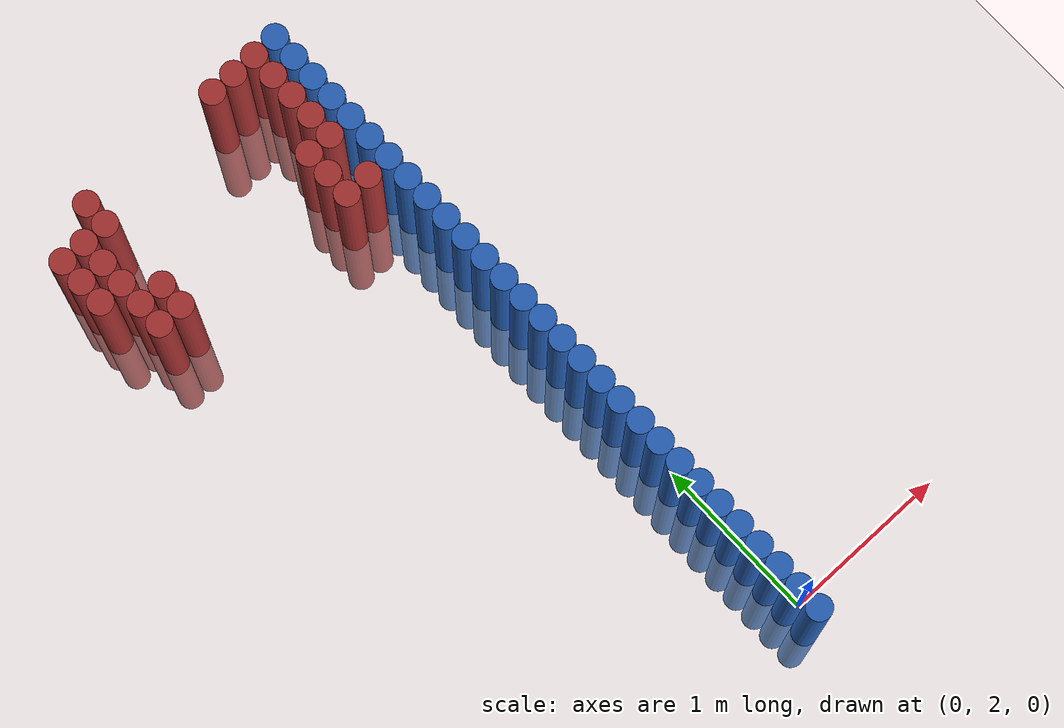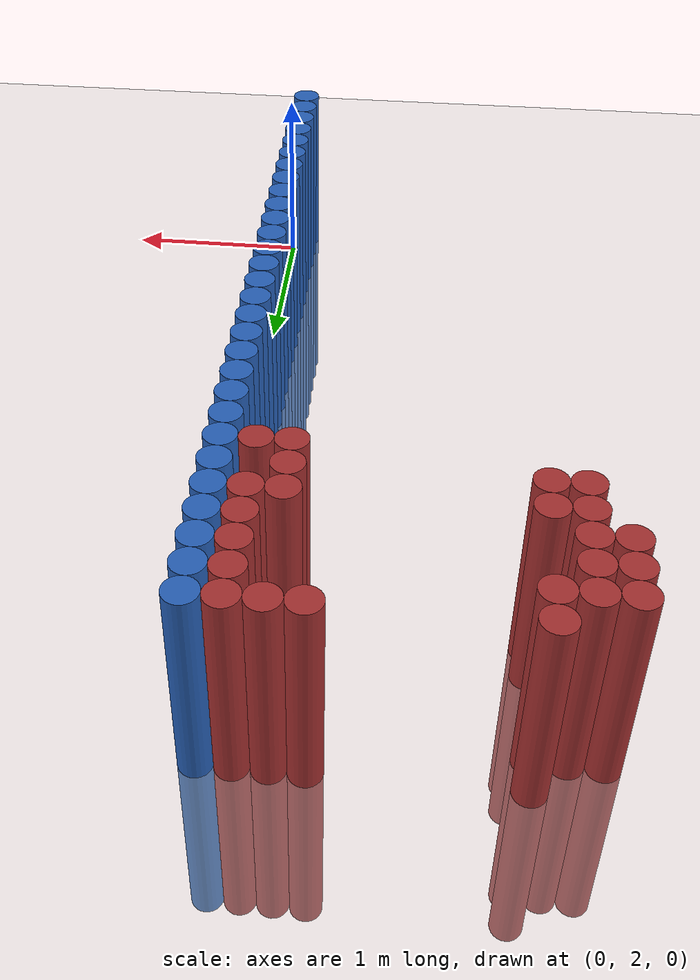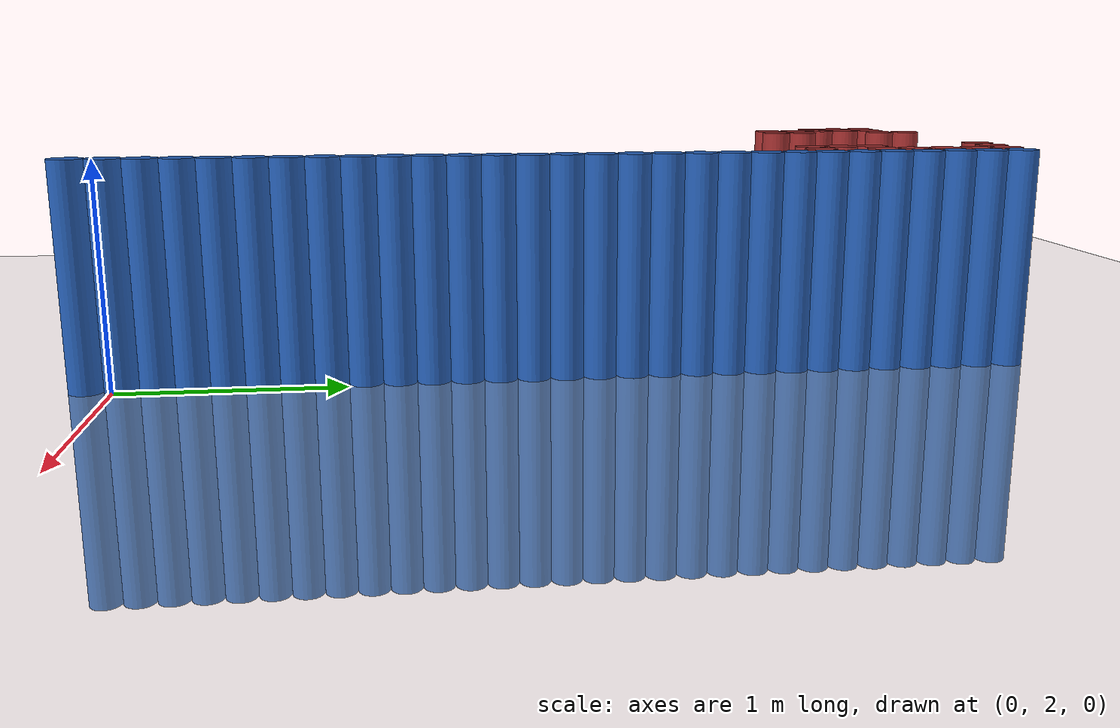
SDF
<sdf version="1.6">
 <world name="default">
  <model name="ground_plane">
   <static>1</static>
   <link name="link">
    <collision name="collision">
     <geometry><plane><normal>0 0 1</normal><size>100 100</size></plane></geometry>
     <surface><friction><ode><mu>100</mu><mu2>50</mu2></ode></friction></surface>
    </collision>
    <visual name="visual">
     <cast_shadows>0</cast_shadows>
     <geometry><plane><normal>0 0 1</normal><size>100 100</size></plane></geometry>
     <material>
      <script><uri>file://media/materials/scripts/gazebo.material</uri><name>Gazebo/Grey</name></script>
     </material>
    </visual>
   </link>
  </model>
  <model name="unit_cylinder_52">
   <static>1</static>
   <pose>-0.075000 1.875000 0.000000 0.000000 0.000000 0.000000</pose>
   <link name="link">
    <inertial>
     <mass>1</mass>
     <inertia><ixx>0.145833</ixx><ixy>0</ixy><ixz>0</ixz><iyy>0.145833</iyy><iyz>0</iyz><izz>0.125</izz></inertia>
    </inertial>
    <collision name="collision">
     <geometry><cylinder><radius>0.075000</radius><length>2</length></cylinder></geometry>
    </collision>
    <visual name="visual">
     <geometry><cylinder><radius>0.075000</radius><length>2</length></cylinder></geometry>
     <material>
      <ambient>0.152000 0.379000 0.720000 1</ambient>
      <diffuse>0.152000 0.379000 0.720000 1</diffuse>
     </material>
     <material>
      <script><name>Gazebo/Grey</name><uri>file://media/materials/scripts/gazebo.material</uri></script>
     </material>
    </visual>
   </link>
  </model>
  <model name="unit_cylinder_54">
   <static>1</static>
   <pose>-0.075000 2.025000 0.000000 0.000000 0.000000 0.000000</pose>
   <link name="link">
    <inertial>
     <mass>1</mass>
     <inertia><ixx>0.145833</ixx><ixy>0</ixy><ixz>0</ixz><iyy>0.145833</iyy><iyz>0</iyz><izz>0.125</izz></inertia>
    </inertial>
    <collision name="collision">
     <geometry><cylinder><radius>0.075000</radius><length>2</length></cylinder></geometry>
    </collision>
    <visual name="visual">
     <geometry><cylinder><radius>0.075000</radius><length>2</length></cylinder></geometry>
     <material>
      <ambient>0.152000 0.379000 0.720000 1</ambient>
      <diffuse>0.152000 0.379000 0.720000 1</diffuse>
     </material>
     <material>
      <script><name>Gazebo/Grey</name><uri>file://media/materials/scripts/gazebo.material</uri></script>
     </material>
    </visual>
   </link>
  </model>
  <model name="unit_cylinder_56">
   <static>1</static>
   <pose>-0.075000 2.175000 0.000000 0.000000 0.000000 0.000000</pose>
   <link name="link">
    <inertial>
     <mass>1</mass>
     <inertia><ixx>0.145833</ixx><ixy>0</ixy><ixz>0</ixz><iyy>0.145833</iyy><iyz>0</iyz><izz>0.125</izz></inertia>
    </inertial>
    <collision name="collision">
     <geometry><cylinder><radius>0.075000</radius><length>2</length></cylinder></geometry>
    </collision>
    <visual name="visual">
     <geometry><cylinder><radius>0.075000</radius><length>2</length></cylinder></geometry>
     <material>
      <ambient>0.152000 0.379000 0.720000 1</ambient>
      <diffuse>0.152000 0.379000 0.720000 1</diffuse>
     </material>
     <material>
      <script><name>Gazebo/Grey</name><uri>file://media/materials/scripts/gazebo.material</uri></script>
     </material>
    </visual>
   </link>
  </model>
  <model name="unit_cylinder_58">
   <static>1</static>
   <pose>-0.075000 2.325000 0.000000 0.000000 0.000000 0.000000</pose>
   <link name="link">
    <inertial>
     <mass>1</mass>
     <inertia><ixx>0.145833</ixx><ixy>0</ixy><ixz>0</ixz><iyy>0.145833</iyy><iyz>0</iyz><izz>0.125</izz></inertia>
    </inertial>
    <collision name="collision">
     <geometry><cylinder><radius>0.075000</radius><length>2</length></cylinder></geometry>
    </collision>
    <visual name="visual">
     <geometry><cylinder><radius>0.075000</radius><length>2</length></cylinder></geometry>
     <material>
      <ambient>0.152000 0.379000 0.720000 1</ambient>
      <diffuse>0.152000 0.379000 0.720000 1</diffuse>
     </material>
     <material>
      <script><name>Gazebo/Grey</name><uri>file://media/materials/scripts/gazebo.material</uri></script>
     </material>
    </visual>
   </link>
  </model>
  <model name="unit_cylinder_60">
   <static>1</static>
   <pose>-0.075000 2.475000 0.000000 0.000000 0.000000 0.000000</pose>
   <link name="link">
    <inertial>
     <mass>1</mass>
     <inertia><ixx>0.145833</ixx><ixy>0</ixy><ixz>0</ixz><iyy>0.145833</iyy><iyz>0</iyz><izz>0.125</izz></inertia>
    </inertial>
    <collision name="collision">
     <geometry><cylinder><radius>0.075000</radius><length>2</length></cylinder></geometry>
    </collision>
    <visual name="visual">
     <geometry><cylinder><radius>0.075000</radius><length>2</length></cylinder></geometry>
     <material>
      <ambient>0.152000 0.379000 0.720000 1</ambient>
      <diffuse>0.152000 0.379000 0.720000 1</diffuse>
     </material>
     <material>
      <script><name>Gazebo/Grey</name><uri>file://media/materials/scripts/gazebo.material</uri></script>
     </material>
    </visual>
   </link>
  </model>
  <model name="unit_cylinder_62">
   <static>1</static>
   <pose>-0.075000 2.625000 0.000000 0.000000 0.000000 0.000000</pose>
   <link name="link">
    <inertial>
     <mass>1</mass>
     <inertia><ixx>0.145833</ixx><ixy>0</ixy><ixz>0</ixz><iyy>0.145833</iyy><iyz>0</iyz><izz>0.125</izz></inertia>
    </inertial>
    <collision name="collision">
     <geometry><cylinder><radius>0.075000</radius><length>2</length></cylinder></geometry>
    </collision>
    <visual name="visual">
     <geometry><cylinder><radius>0.075000</radius><length>2</length></cylinder></geometry>
     <material>
      <ambient>0.152000 0.379000 0.720000 1</ambient>
      <diffuse>0.152000 0.379000 0.720000 1</diffuse>
     </material>
     <material>
      <script><name>Gazebo/Grey</name><uri>file://media/materials/scripts/gazebo.material</uri></script>
     </material>
    </visual>
   </link>
  </model>
  <model name="unit_cylinder_64">
   <static>1</static>
   <pose>-0.075000 2.775000 0.000000 0.000000 0.000000 0.000000</pose>
   <link name="link">
    <inertial>
     <mass>1</mass>
     <inertia><ixx>0.145833</ixx><ixy>0</ixy><ixz>0</ixz><iyy>0.145833</iyy><iyz>0</iyz><izz>0.125</izz></inertia>
    </inertial>
    <collision name="collision">
     <geometry><cylinder><radius>0.075000</radius><length>2</length></cylinder></geometry>
    </collision>
    <visual name="visual">
     <geometry><cylinder><radius>0.075000</radius><length>2</length></cylinder></geometry>
     <material>
      <ambient>0.152000 0.379000 0.720000 1</ambient>
      <diffuse>0.152000 0.379000 0.720000 1</diffuse>
     </material>
     <material>
      <script><name>Gazebo/Grey</name><uri>file://media/materials/scripts/gazebo.material</uri></script>
     </material>
    </visual>
   </link>
  </model>
  <model name="unit_cylinder_66">
   <static>1</static>
   <pose>-0.075000 2.925000 0.000000 0.000000 0.000000 0.000000</pose>
   <link name="link">
    <inertial>
     <mass>1</mass>
     <inertia><ixx>0.145833</ixx><ixy>0</ixy><ixz>0</ixz><iyy>0.145833</iyy><iyz>0</iyz><izz>0.125</izz></inertia>
    </inertial>
    <collision name="collision">
     <geometry><cylinder><radius>0.075000</radius><length>2</length></cylinder></geometry>
    </collision>
    <visual name="visual">
     <geometry><cylinder><radius>0.075000</radius><length>2</length></cylinder></geometry>
     <material>
      <ambient>0.152000 0.379000 0.720000 1</ambient>
      <diffuse>0.152000 0.379000 0.720000 1</diffuse>
     </material>
     <material>
      <script><name>Gazebo/Grey</name><uri>file://media/materials/scripts/gazebo.material</uri></script>
     </material>
    </visual>
   </link>
  </model>
  <model name="unit_cylinder_68">
   <static>1</static>
   <pose>-0.075000 3.075000 0.000000 0.000000 0.000000 0.000000</pose>
   <link name="link">
    <inertial>
     <mass>1</mass>
     <inertia><ixx>0.145833</ixx><ixy>0</ixy><ixz>0</ixz><iyy>0.145833</iyy><iyz>0</iyz><izz>0.125</izz></inertia>
    </inertial>
    <collision name="collision">
     <geometry><cylinder><radius>0.075000</radius><length>2</length></cylinder></geometry>
    </collision>
    <visual name="visual">
     <geometry><cylinder><radius>0.075000</radius><length>2</length></cylinder></geometry>
     <material>
      <ambient>0.152000 0.379000 0.720000 1</ambient>
      <diffuse>0.152000 0.379000 0.720000 1</diffuse>
     </material>
     <material>
      <script><name>Gazebo/Grey</name><uri>file://media/materials/scripts/gazebo.material</uri></script>
     </material>
    </visual>
   </link>
  </model>
  <model name="unit_cylinder_70">
   <static>1</static>
   <pose>-0.075000 3.225000 0.000000 0.000000 0.000000 0.000000</pose>
   <link name="link">
    <inertial>
     <mass>1</mass>
     <inertia><ixx>0.145833</ixx><ixy>0</ixy><ixz>0</ixz><iyy>0.145833</iyy><iyz>0</iyz><izz>0.125</izz></inertia>
    </inertial>
    <collision name="collision">
     <geometry><cylinder><radius>0.075000</radius><length>2</length></cylinder></geometry>
    </collision>
    <visual name="visual">
     <geometry><cylinder><radius>0.075000</radius><length>2</length></cylinder></geometry>
     <material>
      <ambient>0.152000 0.379000 0.720000 1</ambient>
      <diffuse>0.152000 0.379000 0.720000 1</diffuse>
     </material>
     <material>
      <script><name>Gazebo/Grey</name><uri>file://media/materials/scripts/gazebo.material</uri></script>
     </material>
    </visual>
   </link>
  </model>
  <model name="unit_cylinder_72">
   <static>1</static>
   <pose>-0.075000 3.375000 0.000000 0.000000 0.000000 0.000000</pose>
   <link name="link">
    <inertial>
     <mass>1</mass>
     <inertia><ixx>0.145833</ixx><ixy>0</ixy><ixz>0</ixz><iyy>0.145833</iyy><iyz>0</iyz><izz>0.125</izz></inertia>
    </inertial>
    <collision name="collision">
     <geometry><cylinder><radius>0.075000</radius><length>2</length></cylinder></geometry>
    </collision>
    <visual name="visual">
     <geometry><cylinder><radius>0.075000</radius><length>2</length></cylinder></geometry>
     <material>
      <ambient>0.152000 0.379000 0.720000 1</ambient>
      <diffuse>0.152000 0.379000 0.720000 1</diffuse>
     </material>
     <material>
      <script><name>Gazebo/Grey</name><uri>file://media/materials/scripts/gazebo.material</uri></script>
     </material>
    </visual>
   </link>
  </model>
  <model name="unit_cylinder_74">
   <static>1</static>
   <pose>-0.075000 3.525000 0.000000 0.000000 0.000000 0.000000</pose>
   <link name="link">
    <inertial>
     <mass>1</mass>
     <inertia><ixx>0.145833</ixx><ixy>0</ixy><ixz>0</ixz><iyy>0.145833</iyy><iyz>0</iyz><izz>0.125</izz></inertia>
    </inertial>
    <collision name="collision">
     <geometry><cylinder><radius>0.075000</radius><length>2</length></cylinder></geometry>
    </collision>
    <visual name="visual">
     <geometry><cylinder><radius>0.075000</radius><length>2</length></cylinder></geometry>
     <material>
      <ambient>0.152000 0.379000 0.720000 1</ambient>
      <diffuse>0.152000 0.379000 0.720000 1</diffuse>
     </material>
     <material>
      <script><name>Gazebo/Grey</name><uri>file://media/materials/scripts/gazebo.material</uri></script>
     </material>
    </visual>
   </link>
  </model>
  <model name="unit_cylinder_76">
   <static>1</static>
   <pose>-0.075000 3.675000 0.000000 0.000000 0.000000 0.000000</pose>
   <link name="link">
    <inertial>
     <mass>1</mass>
     <inertia><ixx>0.145833</ixx><ixy>0</ixy><ixz>0</ixz><iyy>0.145833</iyy><iyz>0</iyz><izz>0.125</izz></inertia>
    </inertial>
    <collision name="collision">
     <geometry><cylinder><radius>0.075000</radius><length>2</length></cylinder></geometry>
    </collision>
    <visual name="visual">
     <geometry><cylinder><radius>0.075000</radius><length>2</length></cylinder></geometry>
     <material>
      <ambient>0.152000 0.379000 0.720000 1</ambient>
      <diffuse>0.152000 0.379000 0.720000 1</diffuse>
     </material>
     <material>
      <script><name>Gazebo/Grey</name><uri>file://media/materials/scripts/gazebo.material</uri></script>
     </material>
    </visual>
   </link>
  </model>
  <model name="unit_cylinder_78">
   <static>1</static>
   <pose>-0.075000 3.825000 0.000000 0.000000 0.000000 0.000000</pose>
   <link name="link">
    <inertial>
     <mass>1</mass>
     <inertia><ixx>0.145833</ixx><ixy>0</ixy><ixz>0</ixz><iyy>0.145833</iyy><iyz>0</iyz><izz>0.125</izz></inertia>
    </inertial>
    <collision name="collision">
     <geometry><cylinder><radius>0.075000</radius><length>2</length></cylinder></geometry>
    </collision>
    <visual name="visual">
     <geometry><cylinder><radius>0.075000</radius><length>2</length></cylinder></geometry>
     <material>
      <ambient>0.152000 0.379000 0.720000 1</ambient>
      <diffuse>0.152000 0.379000 0.720000 1</diffuse>
     </material>
     <material>
      <script><name>Gazebo/Grey</name><uri>file://media/materials/scripts/gazebo.material</uri></script>
     </material>
    </visual>
   </link>
  </model>
  <model name="unit_cylinder_80">
   <static>1</static>
   <pose>-0.075000 3.975000 0.000000 0.000000 0.000000 0.000000</pose>
   <link name="link">
    <inertial>
     <mass>1</mass>
     <inertia><ixx>0.145833</ixx><ixy>0</ixy><ixz>0</ixz><iyy>0.145833</iyy><iyz>0</iyz><izz>0.125</izz></inertia>
    </inertial>
    <collision name="collision">
     <geometry><cylinder><radius>0.075000</radius><length>2</length></cylinder></geometry>
    </collision>
    <visual name="visual">
     <geometry><cylinder><radius>0.075000</radius><length>2</length></cylinder></geometry>
     <material>
      <ambient>0.152000 0.379000 0.720000 1</ambient>
      <diffuse>0.152000 0.379000 0.720000 1</diffuse>
     </material>
     <material>
      <script><name>Gazebo/Grey</name><uri>file://media/materials/scripts/gazebo.material</uri></script>
     </material>
    </visual>
   </link>
  </model>
  <model name="unit_cylinder_82">
   <static>1</static>
   <pose>-0.075000 4.125000 0.000000 0.000000 0.000000 0.000000</pose>
   <link name="link">
    <inertial>
     <mass>1</mass>
     <inertia><ixx>0.145833</ixx><ixy>0</ixy><ixz>0</ixz><iyy>0.145833</iyy><iyz>0</iyz><izz>0.125</izz></inertia>
    </inertial>
    <collision name="collision">
     <geometry><cylinder><radius>0.075000</radius><length>2</length></cylinder></geometry>
    </collision>
    <visual name="visual">
     <geometry><cylinder><radius>0.075000</radius><length>2</length></cylinder></geometry>
     <material>
      <ambient>0.152000 0.379000 0.720000 1</ambient>
      <diffuse>0.152000 0.379000 0.720000 1</diffuse>
     </material>
     <material>
      <script><name>Gazebo/Grey</name><uri>file://media/materials/scripts/gazebo.material</uri></script>
     </material>
    </visual>
   </link>
  </model>
  <model name="unit_cylinder_84">
   <static>1</static>
   <pose>-0.075000 4.275000 0.000000 0.000000 0.000000 0.000000</pose>
   <link name="link">
    <inertial>
     <mass>1</mass>
     <inertia><ixx>0.145833</ixx><ixy>0</ixy><ixz>0</ixz><iyy>0.145833</iyy><iyz>0</iyz><izz>0.125</izz></inertia>
    </inertial>
    <collision name="collision">
     <geometry><cylinder><radius>0.075000</radius><length>2</length></cylinder></geometry>
    </collision>
    <visual name="visual">
     <geometry><cylinder><radius>0.075000</radius><length>2</length></cylinder></geometry>
     <material>
      <ambient>0.152000 0.379000 0.720000 1</ambient>
      <diffuse>0.152000 0.379000 0.720000 1</diffuse>
     </material>
     <material>
      <script><name>Gazebo/Grey</name><uri>file://media/materials/scripts/gazebo.material</uri></script>
     </material>
    </visual>
   </link>
  </model>
  <model name="unit_cylinder_86">
   <static>1</static>
   <pose>-0.075000 4.425000 0.000000 0.000000 0.000000 0.000000</pose>
   <link name="link">
    <inertial>
     <mass>1</mass>
     <inertia><ixx>0.145833</ixx><ixy>0</ixy><ixz>0</ixz><iyy>0.145833</iyy><iyz>0</iyz><izz>0.125</izz></inertia>
    </inertial>
    <collision name="collision">
     <geometry><cylinder><radius>0.075000</radius><length>2</length></cylinder></geometry>
    </collision>
    <visual name="visual">
     <geometry><cylinder><radius>0.075000</radius><length>2</length></cylinder></geometry>
     <material>
      <ambient>0.152000 0.379000 0.720000 1</ambient>
      <diffuse>0.152000 0.379000 0.720000 1</diffuse>
     </material>
     <material>
      <script><name>Gazebo/Grey</name><uri>file://media/materials/scripts/gazebo.material</uri></script>
     </material>
    </visual>
   </link>
  </model>
  <model name="unit_cylinder_88">
   <static>1</static>
   <pose>-0.075000 4.575000 0.000000 0.000000 0.000000 0.000000</pose>
   <link name="link">
    <inertial>
     <mass>1</mass>
     <inertia><ixx>0.145833</ixx><ixy>0</ixy><ixz>0</ixz><iyy>0.145833</iyy><iyz>0</iyz><izz>0.125</izz></inertia>
    </inertial>
    <collision name="collision">
     <geometry><cylinder><radius>0.075000</radius><length>2</length></cylinder></geometry>
    </collision>
    <visual name="visual">
     <geometry><cylinder><radius>0.075000</radius><length>2</length></cylinder></geometry>
     <material>
      <ambient>0.152000 0.379000 0.720000 1</ambient>
      <diffuse>0.152000 0.379000 0.720000 1</diffuse>
     </material>
     <material>
      <script><name>Gazebo/Grey</name><uri>file://media/materials/scripts/gazebo.material</uri></script>
     </material>
    </visual>
   </link>
  </model>
  <model name="unit_cylinder_90">
   <static>1</static>
   <pose>-0.075000 4.725000 0.000000 0.000000 0.000000 0.000000</pose>
   <link name="link">
    <inertial>
     <mass>1</mass>
     <inertia><ixx>0.145833</ixx><ixy>0</ixy><ixz>0</ixz><iyy>0.145833</iyy><iyz>0</iyz><izz>0.125</izz></inertia>
    </inertial>
    <collision name="collision">
     <geometry><cylinder><radius>0.075000</radius><length>2</length></cylinder></geometry>
    </collision>
    <visual name="visual">
     <geometry><cylinder><radius>0.075000</radius><length>2</length></cylinder></geometry>
     <material>
      <ambient>0.152000 0.379000 0.720000 1</ambient>
      <diffuse>0.152000 0.379000 0.720000 1</diffuse>
     </material>
     <material>
      <script><name>Gazebo/Grey</name><uri>file://media/materials/scripts/gazebo.material</uri></script>
     </material>
    </visual>
   </link>
  </model>
  <model name="unit_cylinder_92">
   <static>1</static>
   <pose>-0.075000 4.875000 0.000000 0.000000 0.000000 0.000000</pose>
   <link name="link">
    <inertial>
     <mass>1</mass>
     <inertia><ixx>0.145833</ixx><ixy>0</ixy><ixz>0</ixz><iyy>0.145833</iyy><iyz>0</iyz><izz>0.125</izz></inertia>
    </inertial>
    <collision name="collision">
     <geometry><cylinder><radius>0.075000</radius><length>2</length></cylinder></geometry>
    </collision>
    <visual name="visual">
     <geometry><cylinder><radius>0.075000</radius><length>2</length></cylinder></geometry>
     <material>
      <ambient>0.152000 0.379000 0.720000 1</ambient>
      <diffuse>0.152000 0.379000 0.720000 1</diffuse>
     </material>
     <material>
      <script><name>Gazebo/Grey</name><uri>file://media/materials/scripts/gazebo.material</uri></script>
     </material>
    </visual>
   </link>
  </model>
  <model name="unit_cylinder_94">
   <static>1</static>
   <pose>-0.075000 5.025000 0.000000 0.000000 0.000000 0.000000</pose>
   <link name="link">
    <inertial>
     <mass>1</mass>
     <inertia><ixx>0.145833</ixx><ixy>0</ixy><ixz>0</ixz><iyy>0.145833</iyy><iyz>0</iyz><izz>0.125</izz></inertia>
    </inertial>
    <collision name="collision">
     <geometry><cylinder><radius>0.075000</radius><length>2</length></cylinder></geometry>
    </collision>
    <visual name="visual">
     <geometry><cylinder><radius>0.075000</radius><length>2</length></cylinder></geometry>
     <material>
      <ambient>0.152000 0.379000 0.720000 1</ambient>
      <diffuse>0.152000 0.379000 0.720000 1</diffuse>
     </material>
     <material>
      <script><name>Gazebo/Grey</name><uri>file://media/materials/scripts/gazebo.material</uri></script>
     </material>
    </visual>
   </link>
  </model>
  <model name="unit_cylinder_232">
   <static>1</static>
   <pose>-1.725000 5.625000 0.000000 0.000000 0.000000 0.000000</pose>
   <link name="link">
    <inertial>
     <mass>1</mass>
     <inertia><ixx>0.145833</ixx><ixy>0</ixy><ixz>0</ixz><iyy>0.145833</iyy><iyz>0</iyz><izz>0.125</izz></inertia>
    </inertial>
    <collision name="collision">
     <geometry><cylinder><radius>0.075000</radius><length>2</length></cylinder></geometry>
    </collision>
    <visual name="visual">
     <geometry><cylinder><radius>0.075000</radius><length>2</length></cylinder></geometry>
     <material>
      <ambient>0.648000 0.192000 0.192000 1</ambient>
      <diffuse>0.648000 0.192000 0.192000 1</diffuse>
     </material>
     <material>
      <script><name>Gazebo/Grey</name><uri>file://media/materials/scripts/gazebo.material</uri></script>
     </material>
    </visual>
   </link>
  </model>
  <model name="unit_cylinder_233">
   <static>1</static>
   <pose>-1.725000 5.775000 0.000000 0.000000 0.000000 0.000000</pose>
   <link name="link">
    <inertial>
     <mass>1</mass>
     <inertia><ixx>0.145833</ixx><ixy>0</ixy><ixz>0</ixz><iyy>0.145833</iyy><iyz>0</iyz><izz>0.125</izz></inertia>
    </inertial>
    <collision name="collision">
     <geometry><cylinder><radius>0.075000</radius><length>2</length></cylinder></geometry>
    </collision>
    <visual name="visual">
     <geometry><cylinder><radius>0.075000</radius><length>2</length></cylinder></geometry>
     <material>
      <ambient>0.648000 0.192000 0.192000 1</ambient>
      <diffuse>0.648000 0.192000 0.192000 1</diffuse>
     </material>
     <material>
      <script><name>Gazebo/Grey</name><uri>file://media/materials/scripts/gazebo.material</uri></script>
     </material>
    </visual>
   </link>
  </model>
  <model name="unit_cylinder_234">
   <static>1</static>
   <pose>-1.725000 5.925000 0.000000 0.000000 0.000000 0.000000</pose>
   <link name="link">
    <inertial>
     <mass>1</mass>
     <inertia><ixx>0.145833</ixx><ixy>0</ixy><ixz>0</ixz><iyy>0.145833</iyy><iyz>0</iyz><izz>0.125</izz></inertia>
    </inertial>
    <collision name="collision">
     <geometry><cylinder><radius>0.075000</radius><length>2</length></cylinder></geometry>
    </collision>
    <visual name="visual">
     <geometry><cylinder><radius>0.075000</radius><length>2</length></cylinder></geometry>
     <material>
      <ambient>0.648000 0.192000 0.192000 1</ambient>
      <diffuse>0.648000 0.192000 0.192000 1</diffuse>
     </material>
     <material>
      <script><name>Gazebo/Grey</name><uri>file://media/materials/scripts/gazebo.material</uri></script>
     </material>
    </visual>
   </link>
  </model>
  <model name="unit_cylinder_241">
   <static>1</static>
   <pose>-1.575000 5.325000 0.000000 0.000000 0.000000 0.000000</pose>
   <link name="link">
    <inertial>
     <mass>1</mass>
     <inertia><ixx>0.145833</ixx><ixy>0</ixy><ixz>0</ixz><iyy>0.145833</iyy><iyz>0</iyz><izz>0.125</izz></inertia>
    </inertial>
    <collision name="collision">
     <geometry><cylinder><radius>0.075000</radius><length>2</length></cylinder></geometry>
    </collision>
    <visual name="visual">
     <geometry><cylinder><radius>0.075000</radius><length>2</length></cylinder></geometry>
     <material>
      <ambient>0.648000 0.192000 0.192000 1</ambient>
      <diffuse>0.648000 0.192000 0.192000 1</diffuse>
     </material>
     <material>
      <script><name>Gazebo/Grey</name><uri>file://media/materials/scripts/gazebo.material</uri></script>
     </material>
    </visual>
   </link>
  </model>
  <model name="unit_cylinder_242">
   <static>1</static>
   <pose>-1.575000 5.475000 0.000000 0.000000 0.000000 0.000000</pose>
   <link name="link">
    <inertial>
     <mass>1</mass>
     <inertia><ixx>0.145833</ixx><ixy>0</ixy><ixz>0</ixz><iyy>0.145833</iyy><iyz>0</iyz><izz>0.125</izz></inertia>
    </inertial>
    <collision name="collision">
     <geometry><cylinder><radius>0.075000</radius><length>2</length></cylinder></geometry>
    </collision>
    <visual name="visual">
     <geometry><cylinder><radius>0.075000</radius><length>2</length></cylinder></geometry>
     <material>
      <ambient>0.648000 0.192000 0.192000 1</ambient>
      <diffuse>0.648000 0.192000 0.192000 1</diffuse>
     </material>
     <material>
      <script><name>Gazebo/Grey</name><uri>file://media/materials/scripts/gazebo.material</uri></script>
     </material>
    </visual>
   </link>
  </model>
  <model name="unit_cylinder_243">
   <static>1</static>
   <pose>-1.575000 5.625000 0.000000 0.000000 0.000000 0.000000</pose>
   <link name="link">
    <inertial>
     <mass>1</mass>
     <inertia><ixx>0.145833</ixx><ixy>0</ixy><ixz>0</ixz><iyy>0.145833</iyy><iyz>0</iyz><izz>0.125</izz></inertia>
    </inertial>
    <collision name="collision">
     <geometry><cylinder><radius>0.075000</radius><length>2</length></cylinder></geometry>
    </collision>
    <visual name="visual">
     <geometry><cylinder><radius>0.075000</radius><length>2</length></cylinder></geometry>
     <material>
      <ambient>0.648000 0.192000 0.192000 1</ambient>
      <diffuse>0.648000 0.192000 0.192000 1</diffuse>
     </material>
     <material>
      <script><name>Gazebo/Grey</name><uri>file://media/materials/scripts/gazebo.material</uri></script>
     </material>
    </visual>
   </link>
  </model>
  <model name="unit_cylinder_244">
   <static>1</static>
   <pose>-1.575000 5.775000 0.000000 0.000000 0.000000 0.000000</pose>
   <link name="link">
    <inertial>
     <mass>1</mass>
     <inertia><ixx>0.145833</ixx><ixy>0</ixy><ixz>0</ixz><iyy>0.145833</iyy><iyz>0</iyz><izz>0.125</izz></inertia>
    </inertial>
    <collision name="collision">
     <geometry><cylinder><radius>0.075000</radius><length>2</length></cylinder></geometry>
    </collision>
    <visual name="visual">
     <geometry><cylinder><radius>0.075000</radius><length>2</length></cylinder></geometry>
     <material>
      <ambient>0.648000 0.192000 0.192000 1</ambient>
      <diffuse>0.648000 0.192000 0.192000 1</diffuse>
     </material>
     <material>
      <script><name>Gazebo/Grey</name><uri>file://media/materials/scripts/gazebo.material</uri></script>
     </material>
    </visual>
   </link>
  </model>
  <model name="unit_cylinder_245">
   <static>1</static>
   <pose>-1.575000 5.925000 0.000000 0.000000 0.000000 0.000000</pose>
   <link name="link">
    <inertial>
     <mass>1</mass>
     <inertia><ixx>0.145833</ixx><ixy>0</ixy><ixz>0</ixz><iyy>0.145833</iyy><iyz>0</iyz><izz>0.125</izz></inertia>
    </inertial>
    <collision name="collision">
     <geometry><cylinder><radius>0.075000</radius><length>2</length></cylinder></geometry>
    </collision>
    <visual name="visual">
     <geometry><cylinder><radius>0.075000</radius><length>2</length></cylinder></geometry>
     <material>
      <ambient>0.648000 0.192000 0.192000 1</ambient>
      <diffuse>0.648000 0.192000 0.192000 1</diffuse>
     </material>
     <material>
      <script><name>Gazebo/Grey</name><uri>file://media/materials/scripts/gazebo.material</uri></script>
     </material>
    </visual>
   </link>
  </model>
  <model name="unit_cylinder_252">
   <static>1</static>
   <pose>-1.425000 5.325000 0.000000 0.000000 0.000000 0.000000</pose>
   <link name="link">
    <inertial>
     <mass>1</mass>
     <inertia><ixx>0.145833</ixx><ixy>0</ixy><ixz>0</ixz><iyy>0.145833</iyy><iyz>0</iyz><izz>0.125</izz></inertia>
    </inertial>
    <collision name="collision">
     <geometry><cylinder><radius>0.075000</radius><length>2</length></cylinder></geometry>
    </collision>
    <visual name="visual">
     <geometry><cylinder><radius>0.075000</radius><length>2</length></cylinder></geometry>
     <material>
      <ambient>0.648000 0.192000 0.192000 1</ambient>
      <diffuse>0.648000 0.192000 0.192000 1</diffuse>
     </material>
     <material>
      <script><name>Gazebo/Grey</name><uri>file://media/materials/scripts/gazebo.material</uri></script>
     </material>
    </visual>
   </link>
  </model>
  <model name="unit_cylinder_253">
   <static>1</static>
   <pose>-1.425000 5.475000 0.000000 0.000000 0.000000 0.000000</pose>
   <link name="link">
    <inertial>
     <mass>1</mass>
     <inertia><ixx>0.145833</ixx><ixy>0</ixy><ixz>0</ixz><iyy>0.145833</iyy><iyz>0</iyz><izz>0.125</izz></inertia>
    </inertial>
    <collision name="collision">
     <geometry><cylinder><radius>0.075000</radius><length>2</length></cylinder></geometry>
    </collision>
    <visual name="visual">
     <geometry><cylinder><radius>0.075000</radius><length>2</length></cylinder></geometry>
     <material>
      <ambient>0.648000 0.192000 0.192000 1</ambient>
      <diffuse>0.648000 0.192000 0.192000 1</diffuse>
     </material>
     <material>
      <script><name>Gazebo/Grey</name><uri>file://media/materials/scripts/gazebo.material</uri></script>
     </material>
    </visual>
   </link>
  </model>
  <model name="unit_cylinder_254">
   <static>1</static>
   <pose>-1.425000 5.925000 0.000000 0.000000 0.000000 0.000000</pose>
   <link name="link">
    <inertial>
     <mass>1</mass>
     <inertia><ixx>0.145833</ixx><ixy>0</ixy><ixz>0</ixz><iyy>0.145833</iyy><iyz>0</iyz><izz>0.125</izz></inertia>
    </inertial>
    <collision name="collision">
     <geometry><cylinder><radius>0.075000</radius><length>2</length></cylinder></geometry>
    </collision>
    <visual name="visual">
     <geometry><cylinder><radius>0.075000</radius><length>2</length></cylinder></geometry>
     <material>
      <ambient>0.648000 0.192000 0.192000 1</ambient>
      <diffuse>0.648000 0.192000 0.192000 1</diffuse>
     </material>
     <material>
      <script><name>Gazebo/Grey</name><uri>file://media/materials/scripts/gazebo.material</uri></script>
     </material>
    </visual>
   </link>
  </model>
  <model name="unit_cylinder_255">
   <static>1</static>
   <pose>-1.425000 6.075000 0.000000 0.000000 0.000000 0.000000</pose>
   <link name="link">
    <inertial>
     <mass>1</mass>
     <inertia><ixx>0.145833</ixx><ixy>0</ixy><ixz>0</ixz><iyy>0.145833</iyy><iyz>0</iyz><izz>0.125</izz></inertia>
    </inertial>
    <collision name="collision">
     <geometry><cylinder><radius>0.075000</radius><length>2</length></cylinder></geometry>
    </collision>
    <visual name="visual">
     <geometry><cylinder><radius>0.075000</radius><length>2</length></cylinder></geometry>
     <material>
      <ambient>0.648000 0.192000 0.192000 1</ambient>
      <diffuse>0.648000 0.192000 0.192000 1</diffuse>
     </material>
     <material>
      <script><name>Gazebo/Grey</name><uri>file://media/materials/scripts/gazebo.material</uri></script>
     </material>
    </visual>
   </link>
  </model>
  <model name="unit_cylinder_293">
   <static>1</static>
   <pose>-0.525000 6.075000 0.000000 0.000000 0.000000 0.000000</pose>
   <link name="link">
    <inertial>
     <mass>1</mass>
     <inertia><ixx>0.145833</ixx><ixy>0</ixy><ixz>0</ixz><iyy>0.145833</iyy><iyz>0</iyz><izz>0.125</izz></inertia>
    </inertial>
    <collision name="collision">
     <geometry><cylinder><radius>0.075000</radius><length>2</length></cylinder></geometry>
    </collision>
    <visual name="visual">
     <geometry><cylinder><radius>0.075000</radius><length>2</length></cylinder></geometry>
     <material>
      <ambient>0.648000 0.192000 0.192000 1</ambient>
      <diffuse>0.648000 0.192000 0.192000 1</diffuse>
     </material>
     <material>
      <script><name>Gazebo/Grey</name><uri>file://media/materials/scripts/gazebo.material</uri></script>
     </material>
    </visual>
   </link>
  </model>
  <model name="unit_cylinder_305">
   <static>1</static>
   <pose>-0.375000 5.175000 0.000000 0.000000 0.000000 0.000000</pose>
   <link name="link">
    <inertial>
     <mass>1</mass>
     <inertia><ixx>0.145833</ixx><ixy>0</ixy><ixz>0</ixz><iyy>0.145833</iyy><iyz>0</iyz><izz>0.125</izz></inertia>
    </inertial>
    <collision name="collision">
     <geometry><cylinder><radius>0.075000</radius><length>2</length></cylinder></geometry>
    </collision>
    <visual name="visual">
     <geometry><cylinder><radius>0.075000</radius><length>2</length></cylinder></geometry>
     <material>
      <ambient>0.648000 0.192000 0.192000 1</ambient>
      <diffuse>0.648000 0.192000 0.192000 1</diffuse>
     </material>
     <material>
      <script><name>Gazebo/Grey</name><uri>file://media/materials/scripts/gazebo.material</uri></script>
     </material>
    </visual>
   </link>
  </model>
  <model name="unit_cylinder_306">
   <static>1</static>
   <pose>-0.375000 5.325000 0.000000 0.000000 0.000000 0.000000</pose>
   <link name="link">
    <inertial>
     <mass>1</mass>
     <inertia><ixx>0.145833</ixx><ixy>0</ixy><ixz>0</ixz><iyy>0.145833</iyy><iyz>0</iyz><izz>0.125</izz></inertia>
    </inertial>
    <collision name="collision">
     <geometry><cylinder><radius>0.075000</radius><length>2</length></cylinder></geometry>
    </collision>
    <visual name="visual">
     <geometry><cylinder><radius>0.075000</radius><length>2</length></cylinder></geometry>
     <material>
      <ambient>0.648000 0.192000 0.192000 1</ambient>
      <diffuse>0.648000 0.192000 0.192000 1</diffuse>
     </material>
     <material>
      <script><name>Gazebo/Grey</name><uri>file://media/materials/scripts/gazebo.material</uri></script>
     </material>
    </visual>
   </link>
  </model>
  <model name="unit_cylinder_307">
   <static>1</static>
   <pose>-0.375000 5.475000 0.000000 0.000000 0.000000 0.000000</pose>
   <link name="link">
    <inertial>
     <mass>1</mass>
     <inertia><ixx>0.145833</ixx><ixy>0</ixy><ixz>0</ixz><iyy>0.145833</iyy><iyz>0</iyz><izz>0.125</izz></inertia>
    </inertial>
    <collision name="collision">
     <geometry><cylinder><radius>0.075000</radius><length>2</length></cylinder></geometry>
    </collision>
    <visual name="visual">
     <geometry><cylinder><radius>0.075000</radius><length>2</length></cylinder></geometry>
     <material>
      <ambient>0.648000 0.192000 0.192000 1</ambient>
      <diffuse>0.648000 0.192000 0.192000 1</diffuse>
     </material>
     <material>
      <script><name>Gazebo/Grey</name><uri>file://media/materials/scripts/gazebo.material</uri></script>
     </material>
    </visual>
   </link>
  </model>
  <model name="unit_cylinder_308">
   <static>1</static>
   <pose>-0.375000 6.075000 0.000000 0.000000 0.000000 0.000000</pose>
   <link name="link">
    <inertial>
     <mass>1</mass>
     <inertia><ixx>0.145833</ixx><ixy>0</ixy><ixz>0</ixz><iyy>0.145833</iyy><iyz>0</iyz><izz>0.125</izz></inertia>
    </inertial>
    <collision name="collision">
     <geometry><cylinder><radius>0.075000</radius><length>2</length></cylinder></geometry>
    </collision>
    <visual name="visual">
     <geometry><cylinder><radius>0.075000</radius><length>2</length></cylinder></geometry>
     <material>
      <ambient>0.648000 0.192000 0.192000 1</ambient>
      <diffuse>0.648000 0.192000 0.192000 1</diffuse>
     </material>
     <material>
      <script><name>Gazebo/Grey</name><uri>file://media/materials/scripts/gazebo.material</uri></script>
     </material>
    </visual>
   </link>
  </model>
  <model name="unit_cylinder_320">
   <static>1</static>
   <pose>-0.225000 5.175000 0.000000 0.000000 0.000000 0.000000</pose>
   <link name="link">
    <inertial>
     <mass>1</mass>
     <inertia><ixx>0.145833</ixx><ixy>0</ixy><ixz>0</ixz><iyy>0.145833</iyy><iyz>0</iyz><izz>0.125</izz></inertia>
    </inertial>
    <collision name="collision">
     <geometry><cylinder><radius>0.075000</radius><length>2</length></cylinder></geometry>
    </collision>
    <visual name="visual">
     <geometry><cylinder><radius>0.075000</radius><length>2</length></cylinder></geometry>
     <material>
      <ambient>0.648000 0.192000 0.192000 1</ambient>
      <diffuse>0.648000 0.192000 0.192000 1</diffuse>
     </material>
     <material>
      <script><name>Gazebo/Grey</name><uri>file://media/materials/scripts/gazebo.material</uri></script>
     </material>
    </visual>
   </link>
  </model>
  <model name="unit_cylinder_321">
   <static>1</static>
   <pose>-0.225000 5.475000 0.000000 0.000000 0.000000 0.000000</pose>
   <link name="link">
    <inertial>
     <mass>1</mass>
     <inertia><ixx>0.145833</ixx><ixy>0</ixy><ixz>0</ixz><iyy>0.145833</iyy><iyz>0</iyz><izz>0.125</izz></inertia>
    </inertial>
    <collision name="collision">
     <geometry><cylinder><radius>0.075000</radius><length>2</length></cylinder></geometry>
    </collision>
    <visual name="visual">
     <geometry><cylinder><radius>0.075000</radius><length>2</length></cylinder></geometry>
     <material>
      <ambient>0.648000 0.192000 0.192000 1</ambient>
      <diffuse>0.648000 0.192000 0.192000 1</diffuse>
     </material>
     <material>
      <script><name>Gazebo/Grey</name><uri>file://media/materials/scripts/gazebo.material</uri></script>
     </material>
    </visual>
   </link>
  </model>
  <model name="unit_cylinder_322">
   <static>1</static>
   <pose>-0.225000 5.625000 0.000000 0.000000 0.000000 0.000000</pose>
   <link name="link">
    <inertial>
     <mass>1</mass>
     <inertia><ixx>0.145833</ixx><ixy>0</ixy><ixz>0</ixz><iyy>0.145833</iyy><iyz>0</iyz><izz>0.125</izz></inertia>
    </inertial>
    <collision name="collision">
     <geometry><cylinder><radius>0.075000</radius><length>2</length></cylinder></geometry>
    </collision>
    <visual name="visual">
     <geometry><cylinder><radius>0.075000</radius><length>2</length></cylinder></geometry>
     <material>
      <ambient>0.648000 0.192000 0.192000 1</ambient>
      <diffuse>0.648000 0.192000 0.192000 1</diffuse>
     </material>
     <material>
      <script><name>Gazebo/Grey</name><uri>file://media/materials/scripts/gazebo.material</uri></script>
     </material>
    </visual>
   </link>
  </model>
  <model name="unit_cylinder_323">
   <static>1</static>
   <pose>-0.225000 5.775000 0.000000 0.000000 0.000000 0.000000</pose>
   <link name="link">
    <inertial>
     <mass>1</mass>
     <inertia><ixx>0.145833</ixx><ixy>0</ixy><ixz>0</ixz><iyy>0.145833</iyy><iyz>0</iyz><izz>0.125</izz></inertia>
    </inertial>
    <collision name="collision">
     <geometry><cylinder><radius>0.075000</radius><length>2</length></cylinder></geometry>
    </collision>
    <visual name="visual">
     <geometry><cylinder><radius>0.075000</radius><length>2</length></cylinder></geometry>
     <material>
      <ambient>0.648000 0.192000 0.192000 1</ambient>
      <diffuse>0.648000 0.192000 0.192000 1</diffuse>
     </material>
     <material>
      <script><name>Gazebo/Grey</name><uri>file://media/materials/scripts/gazebo.material</uri></script>
     </material>
    </visual>
   </link>
  </model>
  <model name="unit_cylinder_324">
   <static>1</static>
   <pose>-0.225000 5.925000 0.000000 0.000000 0.000000 0.000000</pose>
   <link name="link">
    <inertial>
     <mass>1</mass>
     <inertia><ixx>0.145833</ixx><ixy>0</ixy><ixz>0</ixz><iyy>0.145833</iyy><iyz>0</iyz><izz>0.125</izz></inertia>
    </inertial>
    <collision name="collision">
     <geometry><cylinder><radius>0.075000</radius><length>2</length></cylinder></geometry>
    </collision>
    <visual name="visual">
     <geometry><cylinder><radius>0.075000</radius><length>2</length></cylinder></geometry>
     <material>
      <ambient>0.648000 0.192000 0.192000 1</ambient>
      <diffuse>0.648000 0.192000 0.192000 1</diffuse>
     </material>
     <material>
      <script><name>Gazebo/Grey</name><uri>file://media/materials/scripts/gazebo.material</uri></script>
     </material>
    </visual>
   </link>
  </model>
  <model name="unit_cylinder_325">
   <static>1</static>
   <pose>-0.225000 6.075000 0.000000 0.000000 0.000000 0.000000</pose>
   <link name="link">
    <inertial>
     <mass>1</mass>
     <inertia><ixx>0.145833</ixx><ixy>0</ixy><ixz>0</ixz><iyy>0.145833</iyy><iyz>0</iyz><izz>0.125</izz></inertia>
    </inertial>
    <collision name="collision">
     <geometry><cylinder><radius>0.075000</radius><length>2</length></cylinder></geometry>
    </collision>
    <visual name="visual">
     <geometry><cylinder><radius>0.075000</radius><length>2</length></cylinder></geometry>
     <material>
      <ambient>0.648000 0.192000 0.192000 1</ambient>
      <diffuse>0.648000 0.192000 0.192000 1</diffuse>
     </material>
     <material>
      <script><name>Gazebo/Grey</name><uri>file://media/materials/scripts/gazebo.material</uri></script>
     </material>
    </visual>
   </link>
  </model>
  <model name="unit_cylinder_335">
   <static>1</static>
   <pose>-0.075000 5.175000 0.000000 0.000000 0.000000 0.000000</pose>
   <link name="link">
    <inertial>
     <mass>1</mass>
     <inertia><ixx>0.145833</ixx><ixy>0</ixy><ixz>0</ixz><iyy>0.145833</iyy><iyz>0</iyz><izz>0.125</izz></inertia>
    </inertial>
    <collision name="collision">
     <geometry><cylinder><radius>0.075000</radius><length>2</length></cylinder></geometry>
    </collision>
    <visual name="visual">
     <geometry><cylinder><radius>0.075000</radius><length>2</length></cylinder></geometry>
     <material>
      <ambient>0.152000 0.379000 0.720000 1</ambient>
      <diffuse>0.152000 0.379000 0.720000 1</diffuse>
     </material>
     <material>
      <script><name>Gazebo/Grey</name><uri>file://media/materials/scripts/gazebo.material</uri></script>
     </material>
    </visual>
   </link>
  </model>
  <model name="unit_cylinder_336">
   <static>1</static>
   <pose>-0.075000 5.325000 0.000000 0.000000 0.000000 0.000000</pose>
   <link name="link">
    <inertial>
     <mass>1</mass>
     <inertia><ixx>0.145833</ixx><ixy>0</ixy><ixz>0</ixz><iyy>0.145833</iyy><iyz>0</iyz><izz>0.125</izz></inertia>
    </inertial>
    <collision name="collision">
     <geometry><cylinder><radius>0.075000</radius><length>2</length></cylinder></geometry>
    </collision>
    <visual name="visual">
     <geometry><cylinder><radius>0.075000</radius><length>2</length></cylinder></geometry>
     <material>
      <ambient>0.152000 0.379000 0.720000 1</ambient>
      <diffuse>0.152000 0.379000 0.720000 1</diffuse>
     </material>
     <material>
      <script><name>Gazebo/Grey</name><uri>file://media/materials/scripts/gazebo.material</uri></script>
     </material>
    </visual>
   </link>
  </model>
  <model name="unit_cylinder_337">
   <static>1</static>
   <pose>-0.075000 5.475000 0.000000 0.000000 0.000000 0.000000</pose>
   <link name="link">
    <inertial>
     <mass>1</mass>
     <inertia><ixx>0.145833</ixx><ixy>0</ixy><ixz>0</ixz><iyy>0.145833</iyy><iyz>0</iyz><izz>0.125</izz></inertia>
    </inertial>
    <collision name="collision">
     <geometry><cylinder><radius>0.075000</radius><length>2</length></cylinder></geometry>
    </collision>
    <visual name="visual">
     <geometry><cylinder><radius>0.075000</radius><length>2</length></cylinder></geometry>
     <material>
      <ambient>0.152000 0.379000 0.720000 1</ambient>
      <diffuse>0.152000 0.379000 0.720000 1</diffuse>
     </material>
     <material>
      <script><name>Gazebo/Grey</name><uri>file://media/materials/scripts/gazebo.material</uri></script>
     </material>
    </visual>
   </link>
  </model>
  <model name="unit_cylinder_338">
   <static>1</static>
   <pose>-0.075000 5.625000 0.000000 0.000000 0.000000 0.000000</pose>
   <link name="link">
    <inertial>
     <mass>1</mass>
     <inertia><ixx>0.145833</ixx><ixy>0</ixy><ixz>0</ixz><iyy>0.145833</iyy><iyz>0</iyz><izz>0.125</izz></inertia>
    </inertial>
    <collision name="collision">
     <geometry><cylinder><radius>0.075000</radius><length>2</length></cylinder></geometry>
    </collision>
    <visual name="visual">
     <geometry><cylinder><radius>0.075000</radius><length>2</length></cylinder></geometry>
     <material>
      <ambient>0.152000 0.379000 0.720000 1</ambient>
      <diffuse>0.152000 0.379000 0.720000 1</diffuse>
     </material>
     <material>
      <script><name>Gazebo/Grey</name><uri>file://media/materials/scripts/gazebo.material</uri></script>
     </material>
    </visual>
   </link>
  </model>
  <model name="unit_cylinder_339">
   <static>1</static>
   <pose>-0.075000 5.775000 0.000000 0.000000 0.000000 0.000000</pose>
   <link name="link">
    <inertial>
     <mass>1</mass>
     <inertia><ixx>0.145833</ixx><ixy>0</ixy><ixz>0</ixz><iyy>0.145833</iyy><iyz>0</iyz><izz>0.125</izz></inertia>
    </inertial>
    <collision name="collision">
     <geometry><cylinder><radius>0.075000</radius><length>2</length></cylinder></geometry>
    </collision>
    <visual name="visual">
     <geometry><cylinder><radius>0.075000</radius><length>2</length></cylinder></geometry>
     <material>
      <ambient>0.152000 0.379000 0.720000 1</ambient>
      <diffuse>0.152000 0.379000 0.720000 1</diffuse>
     </material>
     <material>
      <script><name>Gazebo/Grey</name><uri>file://media/materials/scripts/gazebo.material</uri></script>
     </material>
    </visual>
   </link>
  </model>
  <model name="unit_cylinder_340">
   <static>1</static>
   <pose>-0.075000 5.925000 0.000000 0.000000 0.000000 0.000000</pose>
   <link name="link">
    <inertial>
     <mass>1</mass>
     <inertia><ixx>0.145833</ixx><ixy>0</ixy><ixz>0</ixz><iyy>0.145833</iyy><iyz>0</iyz><izz>0.125</izz></inertia>
    </inertial>
    <collision name="collision">
     <geometry><cylinder><radius>0.075000</radius><length>2</length></cylinder></geometry>
    </collision>
    <visual name="visual">
     <geometry><cylinder><radius>0.075000</radius><length>2</length></cylinder></geometry>
     <material>
      <ambient>0.152000 0.379000 0.720000 1</ambient>
      <diffuse>0.152000 0.379000 0.720000 1</diffuse>
     </material>
     <material>
      <script><name>Gazebo/Grey</name><uri>file://media/materials/scripts/gazebo.material</uri></script>
     </material>
    </visual>
   </link>
  </model>
  <model name="unit_cylinder_341">
   <static>1</static>
   <pose>-0.075000 6.075000 0.000000 0.000000 0.000000 0.000000</pose>
   <link name="link">
    <inertial>
     <mass>1</mass>
     <inertia><ixx>0.145833</ixx><ixy>0</ixy><ixz>0</ixz><iyy>0.145833</iyy><iyz>0</iyz><izz>0.125</izz></inertia>
    </inertial>
    <collision name="collision">
     <geometry><cylinder><radius>0.075000</radius><length>2</length></cylinder></geometry>
    </collision>
    <visual name="visual">
     <geometry><cylinder><radius>0.075000</radius><length>2</length></cylinder></geometry>
     <material>
      <ambient>0.152000 0.379000 0.720000 1</ambient>
      <diffuse>0.152000 0.379000 0.720000 1</diffuse>
     </material>
     <material>
      <script><name>Gazebo/Grey</name><uri>file://media/materials/scripts/gazebo.material</uri></script>
     </material>
    </visual>
   </link>
  </model>
 </world>
</sdf>
